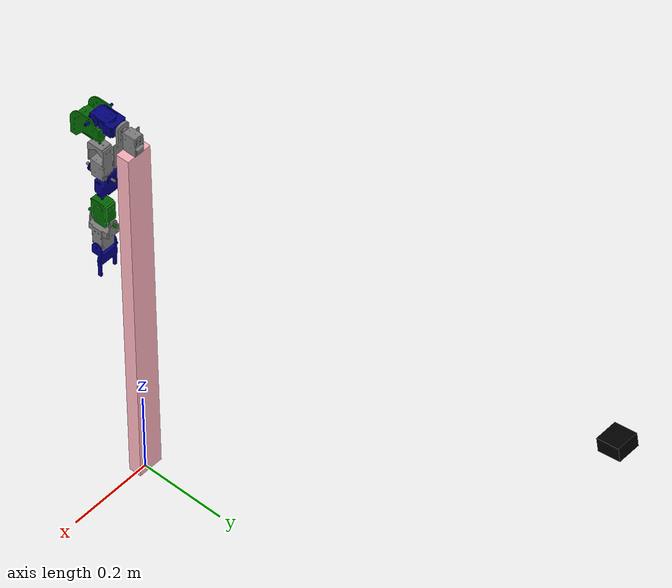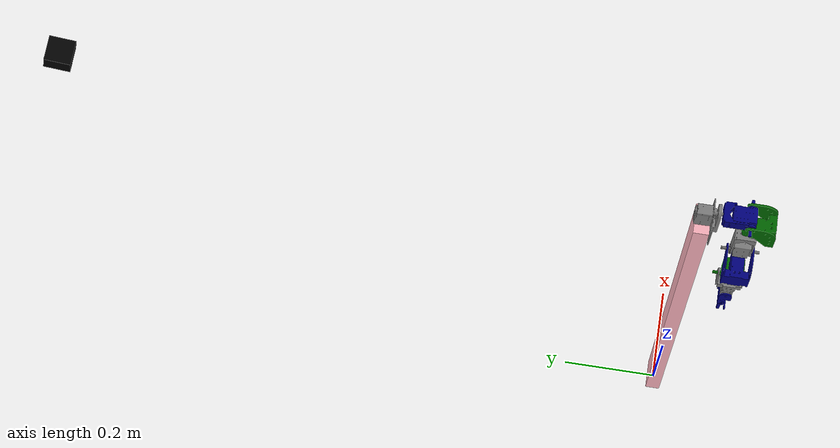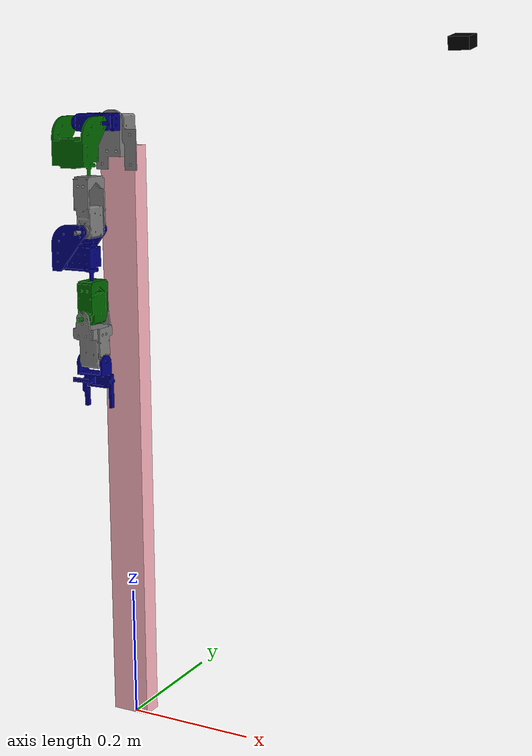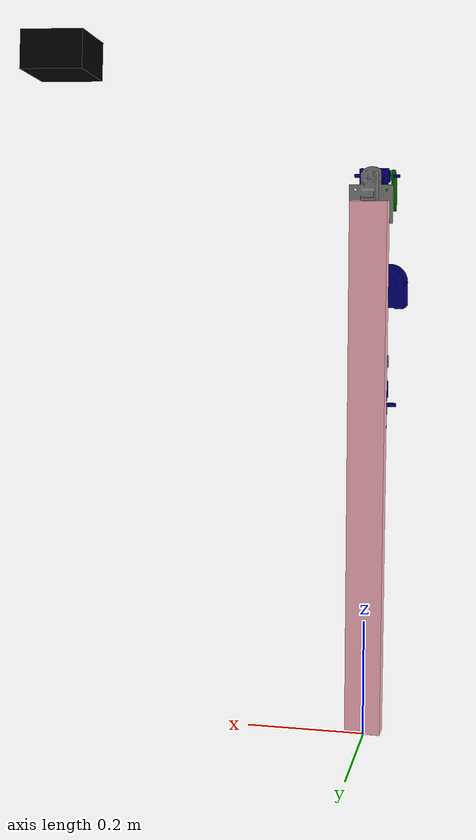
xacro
<?xml version="1.0"?>
<robot xmlns:xacro="http://www.ros.org/wiki/xacro" name="poc_v2">

  <!-- Robot geometry + joints -->
  <xacro:include filename="$(find poc_v2)/urdf/camera_rgbd_real.xacro"/>
  <xacro:include filename="$(find poc_v2)/urdf/poc_arm_real.urdf.xacro" />

  <xacro:rgbd_camera
    parent="torso_link"
    xyz="0.07 1.22 1.06"
    rpy="0 0.17 -1.57"/>

  <!-- ros2_control for Real arm -->
  <xacro:include filename="$(find poc_v2)/urdf/poc_arm_ros2_control_real.xacro" />

  <!-- Instantiate ros2_control system -->
  <xacro:poc_arm_ros2_control_real name="WaveshareArm"/>

</robot>

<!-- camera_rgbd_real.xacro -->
<robot xmlns:xacro="http://www.ros.org/wiki/xacro">

  <xacro:macro name="rgbd_camera" params="parent xyz rpy">

    <!-- Materials -->

    <material name="black">
      <color rgba="0 0 0 1"/>
    </material>

    <!-- Camera mounting link -->

    <link name="camera_link">
      <inertial>
        <origin xyz="0 0 0" rpy="0 0 0"/>
        <mass value="0.3"/>
        <inertia
          ixx="0.0005"
          iyy="0.0005"
          izz="0.0005"
          ixy="0" ixz="0" iyz="0"/>
      </inertial>

      <visual>
        <geometry>
          <box size="0.05 0.05 0.03"/>
        </geometry>
        <material name="black"/>
      </visual>

      <collision>
        <geometry>
          <box size="0.05 0.05 0.03"/>
        </geometry>
      </collision>
    </link>

    <!-- Optical frame link -->

    <link name="camera_frame_link"/>

    <!-- Parent → camera_link -->

    <joint name="head_to_camera_link" type="fixed">
      <parent link="${parent}"/>
      <child link="camera_link"/>
      <origin xyz="${xyz}" rpy="${rpy}"/>
    </joint>

    <!-- camera_link → camera_frame_link (REP-103 optical frame) -->

    <joint name="camera_link_to_camera_frame_link" type="fixed">
      <parent link="camera_link"/>
      <child link="camera_frame_link"/>
      <origin xyz="0 0 0" rpy="-1.57 0 -1.57"/>
    </joint>

  </xacro:macro>

</robot>

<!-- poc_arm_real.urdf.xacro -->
<robot xmlns:xacro="http://www.ros.org/wiki/xacro" name="poc_v2">

  <material name="grey">
      <color rgba="0.5 0.5 0.5 1" />
  </material>

  <material name="blue">
      <color rgba="0 0 0.5 1" />
  </material>

  <material name="green">
      <color rgba="0 0.4 0 1" />
  </material>

  <!-- Torso / base box -->
  <link name="torso_link">
    <inertial>
      <origin xyz="0 0 0.45" rpy="0 0 0"/>
      <mass value="25"/>
      <inertia
        ixx="0.2" ixy="0.0" ixz="0.0"
        iyy="0.2" iyz="0.0"
        izz="0.2"/>
    </inertial>

    <visual>
      <origin xyz="0 0 0.45" rpy="0 0 0"/>
      <geometry>
        <!-- size = X Y Z -->
        <box size="0.06 0.03 0.89"/>
      </geometry>
      <material name="torso_color">
        <color rgba="1 0.71 0.75 1"/>
      </material>
    </visual>

    <collision>
      <origin xyz="0 0 0.45" rpy="0 0 0"/>
      <geometry>
        <box size="0.06 0.03 0.89"/>
      </geometry>
    </collision>
  </link>

  <link
    name="shoulder_base_link">
    <inertial>
      <origin
        xyz="9.7487E-05 -0.0077102 -0.018086"
        rpy="0 0 0" />
      <mass
        value="0.065158" />
      <inertia
        ixx="1.3277E-05"
        ixy="3.3229E-10"
        ixz="4.3851E-09"
        iyy="1.8778E-05"
        iyz="2.5265E-07"
        izz="7.015E-06" />
    </inertial>
    <visual>
      <origin
        xyz="0 0 0"
        rpy="0 0 0" />
      <geometry>
        <mesh
          filename="package://poc_v2/meshes/shoulder_base_link.STL" />
      </geometry>
      <material name="grey"/>
    </visual>
    <collision>
      <origin
        xyz="0 0 0"
        rpy="0 0 0" />
      <geometry>
        <mesh
          filename="package://poc_v2/meshes/shoulder_base_link.STL" />
      </geometry>
    </collision>
  </link>

  <!-- torso -> shoulder_base_link fixed -->
  <joint name="torso_to_shoulder_base" type="fixed">
    <parent link="torso_link"/>
    <child link="shoulder_base_link"/>
    <!-- adjust this offset to place your arm on top of torso -->
    <origin xyz="0 0 0.93" rpy="0 0 0"/>
  </joint>

  <link
    name="shoulder_pitch_link">
    <inertial>
      <origin
        xyz="-4.3944E-05 -0.027448 -0.00011001"
        rpy="0 0 0" />
      <mass
        value="0.058226" />
      <inertia
        ixx="9.1701E-06"
        ixy="4.611E-09"
        ixz="-3.6339E-10"
        iyy="4.5864E-06"
        iyz="-1.102E-09"
        izz="8.3506E-06" />
    </inertial>
    <visual>
      <origin
        xyz="0 0 0"
        rpy="0 0 0" />
      <geometry>
        <mesh
          filename="package://poc_v2/meshes/shoulder_pitch_link.STL" />
      </geometry>
      <material name="blue"/>
    </visual>
    <collision>
      <origin
        xyz="0 0 0"
        rpy="0 0 0" />
      <geometry>
        <mesh
          filename="package://poc_v2/meshes/shoulder_pitch_link.STL" />
      </geometry>
    </collision>
  </link>
  <joint
    name="shoulder_pitch_joint"
    type="revolute">
    <origin
      xyz="0 -0.039425 0"
      rpy="0 0 0" />
    <parent
      link="shoulder_base_link" />
    <child
      link="shoulder_pitch_link" />
    <axis
      xyz="0 -1 0" />
    <limit
      lower="-1.5708"
      upper="1.5708"
      effort="3"
      velocity="4.7124" />
  </joint>
  <link
    name="shoulder_yaw_link">
    <inertial>
      <origin
        xyz="4.1777E-05 -0.022349 -0.037122"
        rpy="0 0 0" />
      <mass
        value="0.07816" />
      <inertia
        ixx="1.7538E-05"
        ixy="1.1171E-09"
        ixz="-6.0564E-10"
        iyy="1.2384E-05"
        iyz="-2.1123E-06"
        izz="1.5499E-05" />
    </inertial>
    <visual>
      <origin
        xyz="0 0 0"
        rpy="0 0 0" />
      <geometry>
        <mesh
          filename="package://poc_v2/meshes/shoulder_yaw_link.STL" />
      </geometry>
      <material name="green"/>
    </visual>
    <collision>
      <origin
        xyz="0 0 0"
        rpy="0 0 0" />
      <geometry>
        <mesh
          filename="package://poc_v2/meshes/shoulder_yaw_link.STL" />
      </geometry>
    </collision>
  </link>
  <joint
    name="shoulder_yaw_joint"
    type="revolute">
    <origin
      xyz="0 -0.047424 0"
      rpy="0 0 0" />
    <parent
      link="shoulder_pitch_link" />
    <child
      link="shoulder_yaw_link" />
    <axis
      xyz="-1 0 0" />
    <limit
      lower="-1.5708"
      upper="1.5708"
      effort="3"
      velocity="4.7124" />
  </joint>
  <link
    name="shoulder_roll_link">
    <inertial>
      <origin
        xyz="0.00010503 -6.0033E-06 -0.046163"
        rpy="0 0 0" />
      <mass
        value="0.062029" />
      <inertia
        ixx="1.0247E-05"
        ixy="-7.3826E-10"
        ixz="1.2386E-09"
        iyy="1.1268E-05"
        iyz="-4.5936E-09"
        izz="4.7933E-06" />
    </inertial>
    <visual>
      <origin
        xyz="0 0 0"
        rpy="0 0 0" />
      <geometry>
        <mesh
          filename="package://poc_v2/meshes/shoulder_roll_link.STL" />
      </geometry>
      <material name="grey"/>
    </visual>
    <collision>
      <origin
        xyz="0 0 0"
        rpy="0 0 0" />
      <geometry>
        <mesh
          filename="package://poc_v2/meshes/shoulder_roll_link.STL" />
      </geometry>
    </collision>
  </link>
  <joint
    name="shoulder_roll_joint"
    type="revolute">
    <origin
      xyz="0.000125 0 -0.08105"
      rpy="0 0 0" />
    <parent
      link="shoulder_yaw_link" />
    <child
      link="shoulder_roll_link" />
    <axis
      xyz="0 0 -1" />
    <limit
      lower="-3.1416"
      upper="3.1416"
      effort="3"
      velocity="4.7124" />
  </joint>
  <link
    name="elbow_pitch_link">
    <inertial>
      <origin
        xyz="-0.022349 -4.1658E-05 -0.03471"
        rpy="0 0 0" />
      <mass
        value="0.07816" />
      <inertia
        ixx="1.2384E-05"
        ixy="-1.0321E-09"
        ixz="-2.112E-06"
        iyy="1.7538E-05"
        iyz="6.7704E-10"
        izz="1.5499E-05" />
    </inertial>
    <visual>
      <origin
        xyz="0 0 0"
        rpy="0 0 0" />
      <geometry>
        <mesh
          filename="package://poc_v2/meshes/elbow_pitch_link.STL" />
      </geometry>
      <material name="blue"/>
    </visual>
    <collision>
      <origin
        xyz="0 0 0"
        rpy="0 0 0" />
      <geometry>
        <mesh
          filename="package://poc_v2/meshes/elbow_pitch_link.STL" />
      </geometry>
    </collision>
  </link>
  <joint
    name="elbow_pitch_joint"
    type="revolute">
    <origin
      xyz="0 0 -0.072424"
      rpy="0 0 0" />
    <parent
      link="shoulder_roll_link" />
    <child
      link="elbow_pitch_link" />
    <axis
      xyz="0 1 0" />
    <limit
      lower="-1.5708"
      upper="1.5708"
      effort="3"
      velocity="4.7124" />
  </joint>
  <link
    name="wrist_roll_link">
    <inertial>
      <origin
        xyz="-0.0001094 0.00049455 -0.027472"
        rpy="0 0 0" />
      <mass
        value="0.059835" />
      <inertia
        ixx="8.7489E-06"
        ixy="-2.3214E-10"
        ixz="-1.1318E-09"
        iyy="9.6573E-06"
        iyz="4.6966E-09"
        izz="4.6776E-06" />
    </inertial>
    <visual>
      <origin
        xyz="0 0 0"
        rpy="0 0 0" />
      <geometry>
        <mesh
          filename="package://poc_v2/meshes/wrist_roll_link.STL" />
      </geometry>
      <material name="green"/>
    </visual>
    <collision>
      <origin
        xyz="0 0 0"
        rpy="0 0 0" />
      <geometry>
        <mesh
          filename="package://poc_v2/meshes/wrist_roll_link.STL" />
      </geometry>
    </collision>
  </link>
  <joint
    name="wrist_roll_joint"
    type="revolute">
    <origin
      xyz="0 -0.000125 -0.07805"
      rpy="0 0 0" />
    <parent
      link="elbow_pitch_link" />
    <child
      link="wrist_roll_link" />
    <axis
      xyz="0 0 -1" />
    <limit
      lower="-3.1416"
      upper="3.1416"
      effort="3"
      velocity="4.7124" />
  </joint>
  <link
    name="wrist_pitch_link">
    <inertial>
      <origin
        xyz="-1.2164E-05 -0.00021517 -0.040822"
        rpy="0 0 0" />
      <mass
        value="0.065136" />
      <inertia
        ixx="1.2184E-05"
        ixy="3.7721E-10"
        ixz="-3.5858E-09"
        iyy="9.7713E-06"
        iyz="-1.0653E-09"
        izz="7.7058E-06" />
    </inertial>
    <visual>
      <origin
        xyz="0 0 0"
        rpy="0 0 0" />
      <geometry>
        <mesh
          filename="package://poc_v2/meshes/wrist_pitch_link.STL" />
      </geometry>
      <material name="grey"/>
    </visual>
    <collision>
      <origin
        xyz="0 0 0"
        rpy="0 0 0" />
      <geometry>
        <mesh
          filename="package://poc_v2/meshes/wrist_pitch_link.STL" />
      </geometry>
    </collision>
  </link>
  <joint
    name="wrist_pitch_joint"
    type="revolute">
    <origin
      xyz="0 0 -0.047424"
      rpy="0 0 0" />
    <parent
      link="wrist_roll_link" />
    <child
      link="wrist_pitch_link" />
    <axis
      xyz="0 -1 0" />
    <limit
      lower="-1.5708"
      upper="1.5708"
      effort="3"
      velocity="4.7124" />
  </joint>

  <link
    name="wrist_yaw_link">
    <inertial>
      <origin
        xyz="-0.00134389225503382 0.00410515462928857 -0.0264402444455359"
        rpy="0 0 0" />
      <mass
        value="0.0153733484376505" />
      <inertia
        ixx="2.23369482968237E-06"
        ixy="-6.06138545788461E-10"
        ixz="3.24772205878924E-07"
        iyy="4.98261144688796E-06"
        iyz="4.19349180435978E-08"
        izz="3.59994172004044E-06" />
    </inertial>
    <visual>
      <origin
        xyz="0 0 0"
        rpy="0 0 0" />
      <geometry>
        <mesh
          filename="package://poc_v2/meshes/wrist_yaw_link.STL" />
      </geometry>
      <material name="blue"/>
    </visual>
    <collision>
      <origin
        xyz="0 0 0"
        rpy="0 0 0" />
      <geometry>
        <mesh
          filename="package://poc_v2/meshes/wrist_yaw_link.STL" />
      </geometry>
    </collision>
  </link>
  <joint
    name="wrist_yaw_joint"
    type="revolute">
    <origin
      xyz="0 -0.000125 -0.064924"
      rpy="0 0 0" />
    <parent
      link="wrist_pitch_link" />
    <child
      link="wrist_yaw_link" />
    <axis
      xyz="-1 0 0" />
    <limit
      lower="-1.5708"
      upper="1.5708"
      effort="3"
      velocity="4.7124" />
  </joint>

</robot>
